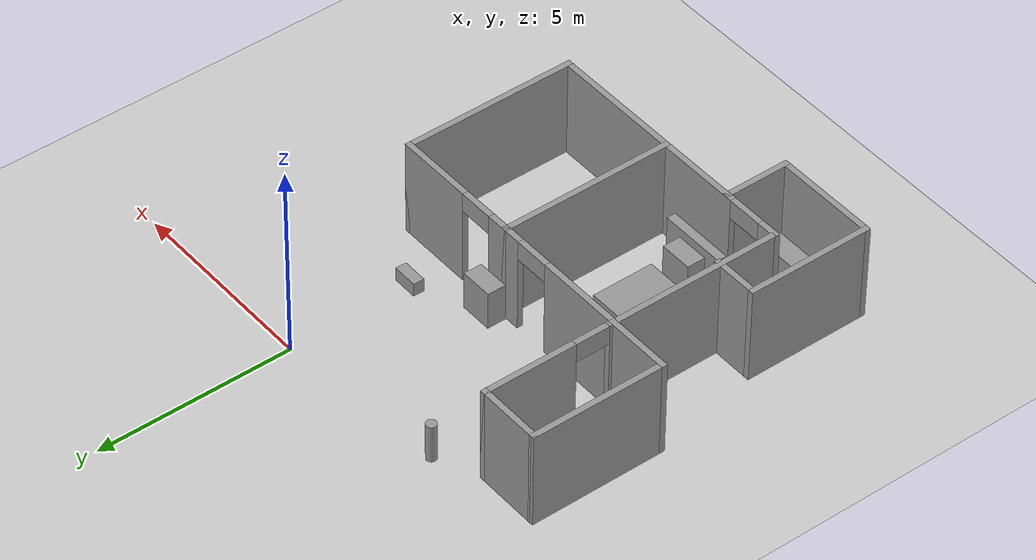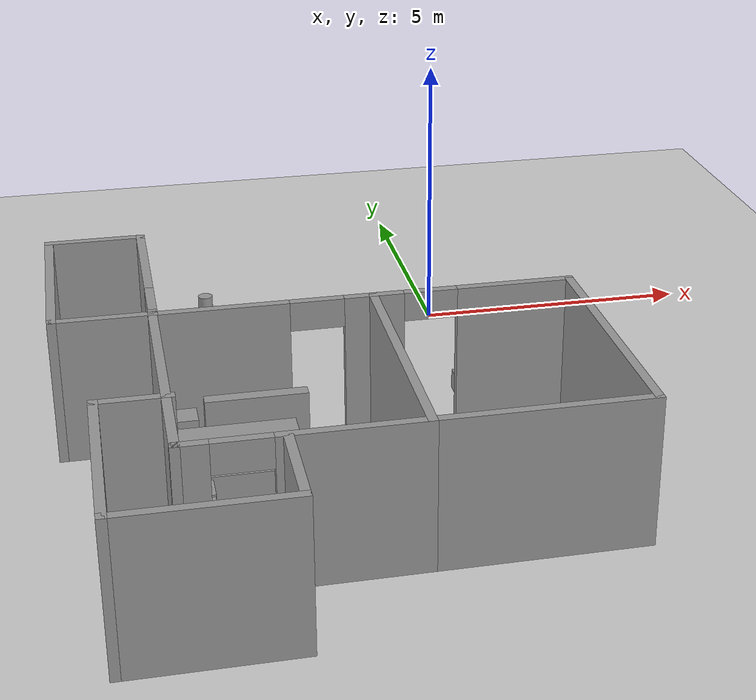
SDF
<sdf version="1.6">
 <world name="default">
  <model name="ground_plane">
   <static>1</static>
   <link name="link">
    <collision name="collision">
     <geometry><plane><normal>0 0 1</normal><size>100 100</size></plane></geometry>
     <surface><friction><ode><mu>100</mu><mu2>50</mu2></ode></friction></surface>
    </collision>
    <visual name="visual">
     <cast_shadows>0</cast_shadows>
     <geometry><plane><normal>0 0 1</normal><size>100 100</size></plane></geometry>
     <material>
      <script><uri>file://media/materials/scripts/gazebo.material</uri><name>Gazebo/Grey</name></script>
     </material>
    </visual>
   </link>
  </model>
  <model name="cma_varanda1">
   <pose>-6.32518 -2.59313 0 0 -0 0</pose>
   <link name="Wall_0">
    <pose>0.8 0 0 0 0 -1.5708</pose>
    <visual name="Wall_0_Visual_0">
     <pose>-0.5525 0 1.25 0 -0 0</pose>
     <geometry><box><size>2.395 0.15 2.5</size></box></geometry>
     <material>
      <script><uri>file://media/materials/scripts/gazebo.material</uri><name>Gazebo/Grey</name></script>
      <ambient>1 1 1 1</ambient>
     </material>
    </visual>
    <collision name="Wall_0_Collision_0">
     <geometry><box><size>2.395 0.15 2.5</size></box></geometry>
     <pose>-0.5525 0 1.25 0 -0 0</pose>
    </collision>
    <visual name="Wall_0_Visual_1">
     <pose>1.6375 0 1.25 0 -0 0</pose>
     <geometry><box><size>0.225 0.15 2.5</size></box></geometry>
     <material>
      <script><uri>file://media/materials/scripts/gazebo.material</uri><name>Gazebo/Grey</name></script>
      <ambient>1 1 1 1</ambient>
     </material>
    </visual>
    <collision name="Wall_0_Collision_1">
     <geometry><box><size>0.225 0.15 2.5</size></box></geometry>
     <pose>1.6375 0 1.25 0 -0 0</pose>
    </collision>
    <visual name="Wall_0_Visual_2">
     <pose>1.085 0 2.25 0 -0 0</pose>
     <geometry><box><size>0.88 0.15 0.5</size></box></geometry>
     <material>
      <script><uri>file://media/materials/scripts/gazebo.material</uri><name>Gazebo/Grey</name></script>
      <ambient>1 1 1 1</ambient>
     </material>
    </visual>
    <collision name="Wall_0_Collision_2">
     <geometry><box><size>0.88 0.15 0.5</size></box></geometry>
     <pose>1.085 0 2.25 0 -0 0</pose>
    </collision>
   </link>
   <link name="Wall_1">
    <collision name="Wall_1_Collision">
     <geometry><box><size>1.75 0.15 2.5</size></box></geometry>
     <pose>0 0 1.25 0 -0 0</pose>
    </collision>
    <visual name="Wall_1_Visual">
     <pose>0 0 1.25 0 -0 0</pose>
     <geometry><box><size>1.75 0.15 2.5</size></box></geometry>
     <material>
      <script><uri>file://media/materials/scripts/gazebo.material</uri><name>Gazebo/Grey</name></script>
      <ambient>1 1 1 1</ambient>
     </material>
    </visual>
    <pose>0 -1.675 0 0 -0 3.14159</pose>
   </link>
   <link name="Wall_2">
    <collision name="Wall_2_Collision">
     <geometry><box><size>3.5 0.15 2.5</size></box></geometry>
     <pose>0 0 1.25 0 -0 0</pose>
    </collision>
    <visual name="Wall_2_Visual">
     <pose>0 0 1.25 0 -0 0</pose>
     <geometry><box><size>3.5 0.15 2.5</size></box></geometry>
     <material>
      <script><uri>file://media/materials/scripts/gazebo.material</uri><name>Gazebo/Grey</name></script>
      <ambient>1 1 1 1</ambient>
     </material>
    </visual>
    <pose>-0.8 0 0 0 -0 1.5708</pose>
   </link>
   <link name="Wall_3">
    <collision name="Wall_3_Collision">
     <geometry><box><size>1.75 0.15 2.5</size></box></geometry>
     <pose>0 0 1.25 0 -0 0</pose>
    </collision>
    <visual name="Wall_3_Visual">
     <pose>0 0 1.25 0 -0 0</pose>
     <geometry><box><size>1.75 0.15 2.5</size></box></geometry>
     <material>
      <script><uri>file://media/materials/scripts/gazebo.material</uri><name>Gazebo/Grey</name></script>
      <ambient>1 1 1 1</ambient>
     </material>
    </visual>
    <pose>0 1.675 0 0 -0 0</pose>
   </link>
   <static>1</static>
  </model>
  <model name="cma_quartos">
   <pose>-2.58169 -7.26456 0 0 -0 0</pose>
   <link name="Wall_0">
    <collision name="Wall_0_Collision">
     <geometry><box><size>4.5 0.15 2.5</size></box></geometry>
     <pose>0 0 1.25 0 -0 0</pose>
    </collision>
    <visual name="Wall_0_Visual">
     <pose>0 0 1.25 0 -0 0</pose>
     <geometry><box><size>4.5 0.15 2.5</size></box></geometry>
     <material>
      <script><uri>file://media/materials/scripts/gazebo.material</uri><name>Gazebo/Grey</name></script>
      <ambient>1 1 1 1</ambient>
     </material>
    </visual>
    <pose>0.645 0.81 0 0 0 -1.5708</pose>
   </link>
   <link name="Wall_1">
    <pose>-1.155 -1.365 0 0 -0 3.14159</pose>
    <visual name="Wall_1_Visual_0">
     <pose>-0.7225 0 1.25 0 -0 0</pose>
     <geometry><box><size>2.305 0.15 2.5</size></box></geometry>
     <material>
      <script><uri>file://media/materials/scripts/gazebo.material</uri><name>Gazebo/Grey</name></script>
      <ambient>1 1 1 1</ambient>
     </material>
    </visual>
    <collision name="Wall_1_Collision_0">
     <geometry><box><size>2.305 0.15 2.5</size></box></geometry>
     <pose>-0.7225 0 1.25 0 -0 0</pose>
    </collision>
    <visual name="Wall_1_Visual_1">
     <pose>1.6025 0 1.25 0 -0 0</pose>
     <geometry><box><size>0.545 0.15 2.5</size></box></geometry>
     <material>
      <script><uri>file://media/materials/scripts/gazebo.material</uri><name>Gazebo/Grey</name></script>
      <ambient>1 1 1 1</ambient>
     </material>
    </visual>
    <collision name="Wall_1_Collision_1">
     <geometry><box><size>0.545 0.15 2.5</size></box></geometry>
     <pose>1.6025 0 1.25 0 -0 0</pose>
    </collision>
    <visual name="Wall_1_Visual_2">
     <pose>0.88 0 2.25 0 -0 0</pose>
     <geometry><box><size>0.9 0.15 0.5</size></box></geometry>
     <material>
      <script><uri>file://media/materials/scripts/gazebo.material</uri><name>Gazebo/Grey</name></script>
      <ambient>1 1 1 1</ambient>
     </material>
    </visual>
    <collision name="Wall_1_Collision_2">
     <geometry><box><size>0.9 0.15 0.5</size></box></geometry>
     <pose>0.88 0 2.25 0 -0 0</pose>
    </collision>
   </link>
   <link name="Wall_10">
    <collision name="Wall_10_Collision">
     <geometry><box><size>1.75 0.15 2.5</size></box></geometry>
     <pose>0 0 1.25 0 -0 0</pose>
    </collision>
    <visual name="Wall_10_Visual">
     <pose>0 0 1.25 0 -0 0</pose>
     <geometry><box><size>1.75 0.15 2.5</size></box></geometry>
     <material>
      <script><uri>file://media/materials/scripts/gazebo.material</uri><name>Gazebo/Grey</name></script>
      <ambient>1 1 1 1</ambient>
     </material>
    </visual>
    <pose>-1.395 -2.185 0 0 0 -1.5708</pose>
   </link>
   <link name="Wall_11">
    <collision name="Wall_11_Collision">
     <geometry><box><size>2.75 0.15 2.5</size></box></geometry>
     <pose>0 0 1.25 0 -0 0</pose>
    </collision>
    <visual name="Wall_11_Visual">
     <pose>0 0 1.25 0 -0 0</pose>
     <geometry><box><size>2.75 0.15 2.5</size></box></geometry>
     <material>
      <script><uri>file://media/materials/scripts/gazebo.material</uri><name>Gazebo/Grey</name></script>
      <ambient>1 1 1 1</ambient>
     </material>
    </visual>
    <pose>-2.695 -2.985 0 0 -0 3.14159</pose>
   </link>
   <link name="Wall_12">
    <collision name="Wall_12_Collision">
     <geometry><box><size>3.25 0.15 2.5</size></box></geometry>
     <pose>0 0 1.25 0 -0 0</pose>
    </collision>
    <visual name="Wall_12_Visual">
     <pose>0 0 1.25 0 -0 0</pose>
     <geometry><box><size>3.25 0.15 2.5</size></box></geometry>
     <material>
      <script><uri>file://media/materials/scripts/gazebo.material</uri><name>Gazebo/Grey</name></script>
      <ambient>1 1 1 1</ambient>
     </material>
    </visual>
    <pose>-3.995 -1.435 0 0 -0 1.5708</pose>
   </link>
   <link name="Wall_13">
    <collision name="Wall_13_Collision">
     <geometry><box><size>1.25 0.15 2.5</size></box></geometry>
     <pose>0 0 1.25 0 -0 0</pose>
    </collision>
    <visual name="Wall_13_Visual">
     <pose>0 0 1.25 0 -0 0</pose>
     <geometry><box><size>1.25 0.15 2.5</size></box></geometry>
     <material>
      <script><uri>file://media/materials/scripts/gazebo.material</uri><name>Gazebo/Grey</name></script>
      <ambient>1 1 1 1</ambient>
     </material>
    </visual>
    <pose>-3.445 0.115 0 0 -0 0</pose>
   </link>
   <link name="Wall_2">
    <collision name="Wall_2_Collision">
     <geometry><box><size>4.5 0.15 2.5</size></box></geometry>
     <pose>0 0 1.25 0 -0 0</pose>
    </collision>
    <visual name="Wall_2_Visual">
     <pose>0 0 1.25 0 -0 0</pose>
     <geometry><box><size>4.5 0.15 2.5</size></box></geometry>
     <material>
      <script><uri>file://media/materials/scripts/gazebo.material</uri><name>Gazebo/Grey</name></script>
      <ambient>1 1 1 1</ambient>
     </material>
    </visual>
    <pose>-2.955 0.81 0 0 -0 1.5708</pose>
   </link>
   <link name="Wall_3">
    <pose>-1.155 2.985 0 0 -0 0</pose>
    <visual name="Wall_3_Visual_0">
     <pose>-0.7325 0 1.25 0 -0 0</pose>
     <geometry><box><size>2.285 0.15 2.5</size></box></geometry>
     <material>
      <script><uri>file://media/materials/scripts/gazebo.material</uri><name>Gazebo/Grey</name></script>
      <ambient>1 1 1 1</ambient>
     </material>
    </visual>
    <collision name="Wall_3_Collision_0">
     <geometry><box><size>2.285 0.15 2.5</size></box></geometry>
     <pose>-0.7325 0 1.25 0 -0 0</pose>
    </collision>
    <visual name="Wall_3_Visual_1">
     <pose>1.5925 0 1.25 0 -0 0</pose>
     <geometry><box><size>0.565 0.15 2.5</size></box></geometry>
     <material>
      <script><uri>file://media/materials/scripts/gazebo.material</uri><name>Gazebo/Grey</name></script>
      <ambient>1 1 1 1</ambient>
     </material>
    </visual>
    <collision name="Wall_3_Collision_1">
     <geometry><box><size>0.565 0.15 2.5</size></box></geometry>
     <pose>1.5925 0 1.25 0 -0 0</pose>
    </collision>
    <visual name="Wall_3_Visual_2">
     <pose>0.86 0 2.25 0 -0 0</pose>
     <geometry><box><size>0.9 0.15 0.5</size></box></geometry>
     <material>
      <script><uri>file://media/materials/scripts/gazebo.material</uri><name>Gazebo/Grey</name></script>
      <ambient>1 1 1 1</ambient>
     </material>
    </visual>
    <collision name="Wall_3_Collision_2">
     <geometry><box><size>0.9 0.15 0.5</size></box></geometry>
     <pose>0.86 0 2.25 0 -0 0</pose>
    </collision>
   </link>
   <link name="Wall_6">
    <pose>2.32 2.985 0 0 -0 0</pose>
    <visual name="Wall_6_Visual_0">
     <pose>-1.4575 0 1.25 0 -0 0</pose>
     <geometry><box><size>0.585 0.15 2.5</size></box></geometry>
     <material>
      <script><uri>file://media/materials/scripts/gazebo.material</uri><name>Gazebo/Grey</name></script>
      <ambient>1 1 1 1</ambient>
     </material>
    </visual>
    <collision name="Wall_6_Collision_0">
     <geometry><box><size>0.585 0.15 2.5</size></box></geometry>
     <pose>-1.4575 0 1.25 0 -0 0</pose>
    </collision>
    <visual name="Wall_6_Visual_1">
     <pose>0.7425 0 1.25 0 -0 0</pose>
     <geometry><box><size>2.015 0.15 2.5</size></box></geometry>
     <material>
      <script><uri>file://media/materials/scripts/gazebo.material</uri><name>Gazebo/Grey</name></script>
      <ambient>1 1 1 1</ambient>
     </material>
    </visual>
    <collision name="Wall_6_Collision_1">
     <geometry><box><size>2.015 0.15 2.5</size></box></geometry>
     <pose>0.7425 0 1.25 0 -0 0</pose>
    </collision>
    <visual name="Wall_6_Visual_2">
     <pose>-0.715 0 2.25 0 -0 0</pose>
     <geometry><box><size>0.9 0.15 0.5</size></box></geometry>
     <material>
      <script><uri>file://media/materials/scripts/gazebo.material</uri><name>Gazebo/Grey</name></script>
      <ambient>1 1 1 1</ambient>
     </material>
    </visual>
    <collision name="Wall_6_Collision_2">
     <geometry><box><size>0.9 0.15 0.5</size></box></geometry>
     <pose>-0.715 0 2.25 0 -0 0</pose>
    </collision>
   </link>
   <link name="Wall_7">
    <collision name="Wall_7_Collision">
     <geometry><box><size>4.5 0.15 2.5</size></box></geometry>
     <pose>0 0 1.25 0 -0 0</pose>
    </collision>
    <visual name="Wall_7_Visual">
     <pose>0 0 1.25 0 -0 0</pose>
     <geometry><box><size>4.5 0.15 2.5</size></box></geometry>
     <material>
      <script><uri>file://media/materials/scripts/gazebo.material</uri><name>Gazebo/Grey</name></script>
      <ambient>1 1 1 1</ambient>
     </material>
    </visual>
    <pose>3.995 0.81 0 0 0 -1.5708</pose>
   </link>
   <link name="Wall_8">
    <collision name="Wall_8_Collision">
     <geometry><box><size>3.5 0.15 2.5</size></box></geometry>
     <pose>0 0 1.25 0 -0 0</pose>
    </collision>
    <visual name="Wall_8_Visual">
     <pose>0 0 1.25 0 -0 0</pose>
     <geometry><box><size>3.5 0.15 2.5</size></box></geometry>
     <material>
      <script><uri>file://media/materials/scripts/gazebo.material</uri><name>Gazebo/Grey</name></script>
      <ambient>1 1 1 1</ambient>
     </material>
    </visual>
    <pose>2.32 -1.365 0 0 -0 3.14159</pose>
   </link>
   <static>1</static>
  </model>
  <model name="cma_armario_s">
   <link name="link_1">
    <pose>-2e-06 -3e-06 0 0 -0 0</pose>
    <inertial>
     <mass>0.390159</mass>
     <inertia>
      <ixx>0.039647</ixx>
      <ixy>0</ixy>
      <ixz>0</ixz>
      <iyy>0.0550708</iyy>
      <iyz>0</iyz>
      <izz>0.0296912</izz>
     </inertia>
    </inertial>
    <visual name="visual">
     <geometry><box><size>0.832942 0.468397 1</size></box></geometry>
     <material>
      <lighting>1</lighting>
      <script><uri>file://media/materials/scripts/gazebo.material</uri><name>Gazebo/Grey</name></script>
      <ambient>0.3 0.3 0.3 1</ambient>
      <diffuse>0.7 0.7 0.7 1</diffuse>
      <specular>0.01 0.01 0.01 1</specular>
      <emissive>0 0 0 1</emissive>
     </material>
    </visual>
    <collision name="collision">
     <geometry><box><size>0.832942 0.468397 1</size></box></geometry>
     <surface>
      <friction>
       <ode><mu>1</mu><mu2>1</mu2><fdir1>0 0 0</fdir1><slip1>0</slip1><slip2>0</slip2></ode>
       <torsional>
        <coefficient>1</coefficient>
        <patch_radius>0</patch_radius>
        <surface_radius>0</surface_radius>
        <use_patch_radius>1</use_patch_radius>
        <ode><slip>0</slip></ode>
       </torsional>
      </friction>
      <bounce><restitution_coefficient>0</restitution_coefficient><threshold>1e+06</threshold></bounce>
      <contact>
       <collide_without_contact>0</collide_without_contact>
       <collide_without_contact_bitmask>1</collide_without_contact_bitmask>
       <collide_bitmask>1</collide_bitmask>
       <ode>
        <soft_cfm>0</soft_cfm>
        <soft_erp>0.2</soft_erp>
        <kp>1e+13</kp>
        <kd>1</kd>
        <max_vel>0.01</max_vel>
        <min_depth>0</min_depth>
       </ode>
       <bullet>
        <split_impulse>1</split_impulse>
        <split_impulse_penetration_threshold>-0.01</split_impulse_penetration_threshold>
        <soft_cfm>0</soft_cfm>
        <soft_erp>0.2</soft_erp>
        <kp>1e+13</kp>
        <kd>1</kd>
       </bullet>
      </contact>
     </surface>
    </collision>
   </link>
   <static>0</static>
   <pose>-1.63838 -3.93789 0.499999 3e-06 -0 0.0021</pose>
  </model>
  <model name="cma_cama_c">
   <link name="link_0">
    <pose>5e-06 -4e-06 0 0 -0 0</pose>
    <inertial>
     <mass>3.18358</mass>
     <inertia><ixx>0.934862</ixx><ixy>0</ixy><ixz>0</ixz><iyy>1.33069</iyy><iyz>0</iyz><izz>1.73496</izz></inertia>
    </inertial>
    <visual name="visual">
     <geometry><box><size>2.00394 1.58866 1</size></box></geometry>
     <material>
      <lighting>1</lighting>
      <script><uri>file://media/materials/scripts/gazebo.material</uri><name>Gazebo/Grey</name></script>
      <ambient>0.3 0.3 0.3 1</ambient>
      <diffuse>0.7 0.7 0.7 1</diffuse>
      <specular>0.01 0.01 0.01 1</specular>
      <emissive>0 0 0 1</emissive>
     </material>
    </visual>
    <collision name="collision">
     <geometry><box><size>2.00394 1.58866 1</size></box></geometry>
     <surface>
      <friction>
       <ode><mu>1</mu><mu2>1</mu2><fdir1>0 0 0</fdir1><slip1>0</slip1><slip2>0</slip2></ode>
       <torsional>
        <coefficient>1</coefficient>
        <patch_radius>0</patch_radius>
        <surface_radius>0</surface_radius>
        <use_patch_radius>1</use_patch_radius>
        <ode><slip>0</slip></ode>
       </torsional>
      </friction>
      <bounce><restitution_coefficient>0</restitution_coefficient><threshold>1e+06</threshold></bounce>
      <contact>
       <collide_without_contact>0</collide_without_contact>
       <collide_without_contact_bitmask>1</collide_without_contact_bitmask>
       <collide_bitmask>1</collide_bitmask>
       <ode>
        <soft_cfm>0</soft_cfm>
        <soft_erp>0.2</soft_erp>
        <kp>1e+13</kp>
        <kd>1</kd>
        <max_vel>0.01</max_vel>
        <min_depth>0</min_depth>
       </ode>
       <bullet>
        <split_impulse>1</split_impulse>
        <split_impulse_penetration_threshold>-0.01</split_impulse_penetration_threshold>
        <soft_cfm>0</soft_cfm>
        <soft_erp>0.2</soft_erp>
        <kp>1e+13</kp>
        <kd>1</kd>
       </bullet>
      </contact>
     </surface>
    </collision>
   </link>
   <static>0</static>
   <pose>-4.43933 -6.24816 0.5 0 -0 0</pose>
  </model>
  <model name="cma_armario_0">
   <link name="link_0">
    <pose>1.32157 0.885178 0.5 0 -0 0</pose>
    <inertial>
     <mass>0.402376</mass>
     <inertia>
      <ixx>0.0353686</ixx>
      <ixy>0</ixy>
      <ixz>0</ixz>
      <iyy>0.132616</iyy>
      <iyz>0</iyz>
      <izz>0.100922</izz>
     </inertia>
    </inertial>
    <visual name="visual">
     <geometry><box><size>1.71877 0.234069 1</size></box></geometry>
     <material>
      <lighting>1</lighting>
      <script><uri>file://media/materials/scripts/gazebo.material</uri><name>Gazebo/Grey</name></script>
      <ambient>0.3 0.3 0.3 1</ambient>
      <diffuse>0.7 0.7 0.7 1</diffuse>
      <specular>0.01 0.01 0.01 1</specular>
      <emissive>0 0 0 1</emissive>
     </material>
    </visual>
    <collision name="collision">
     <geometry><box><size>1.71877 0.234069 1</size></box></geometry>
     <surface>
      <friction>
       <ode><mu>1</mu><mu2>1</mu2><fdir1>0 0 0</fdir1><slip1>0</slip1><slip2>0</slip2></ode>
       <torsional>
        <coefficient>1</coefficient>
        <patch_radius>0</patch_radius>
        <surface_radius>0</surface_radius>
        <use_patch_radius>1</use_patch_radius>
        <ode><slip>0</slip></ode>
       </torsional>
      </friction>
      <bounce><restitution_coefficient>0</restitution_coefficient><threshold>1e+06</threshold></bounce>
      <contact>
       <collide_without_contact>0</collide_without_contact>
       <collide_without_contact_bitmask>1</collide_without_contact_bitmask>
       <collide_bitmask>1</collide_bitmask>
       <ode>
        <soft_cfm>0</soft_cfm>
        <soft_erp>0.2</soft_erp>
        <kp>1e+13</kp>
        <kd>1</kd>
        <max_vel>0.01</max_vel>
        <min_depth>0</min_depth>
       </ode>
       <bullet>
        <split_impulse>1</split_impulse>
        <split_impulse_penetration_threshold>-0.01</split_impulse_penetration_threshold>
        <soft_cfm>0</soft_cfm>
        <soft_erp>0.2</soft_erp>
        <kp>1e+13</kp>
        <kd>1</kd>
       </bullet>
      </contact>
     </surface>
    </collision>
   </link>
   <static>0</static>
   <pose>-5.27888 -5.41566 -2e-06 2e-06 -0 -0.003064</pose>
  </model>
  <model name="cma_gaveteiro_pequeno_1">
   <link name="link_0">
    <pose>0.256174 1.25055 0.5 0 -0 0</pose>
    <inertial>
     <mass>0.187186</mass>
     <inertia>
      <ixx>0.01851</ixx>
      <ixy>0</ixy>
      <ixz>0</ixz>
      <iyy>0.0185276</iyy>
      <iyz>0</iyz>
      <izz>0.00583981</izz>
     </inertia>
    </inertial>
    <visual name="visual">
     <geometry><box><size>0.433317 0.432002 1</size></box></geometry>
     <material>
      <lighting>1</lighting>
      <script><uri>file://media/materials/scripts/gazebo.material</uri><name>Gazebo/Grey</name></script>
      <ambient>0.3 0.3 0.3 1</ambient>
      <diffuse>0.7 0.7 0.7 1</diffuse>
      <specular>0.01 0.01 0.01 1</specular>
      <emissive>0 0 0 1</emissive>
     </material>
    </visual>
    <collision name="collision">
     <geometry><box><size>0.433317 0.432002 1</size></box></geometry>
     <surface>
      <friction>
       <ode><mu>1</mu><mu2>1</mu2><fdir1>0 0 0</fdir1><slip1>0</slip1><slip2>0</slip2></ode>
       <torsional>
        <coefficient>1</coefficient>
        <patch_radius>0</patch_radius>
        <surface_radius>0</surface_radius>
        <use_patch_radius>1</use_patch_radius>
        <ode><slip>0</slip></ode>
       </torsional>
      </friction>
      <bounce><restitution_coefficient>0</restitution_coefficient><threshold>1e+06</threshold></bounce>
      <contact>
       <collide_without_contact>0</collide_without_contact>
       <collide_without_contact_bitmask>1</collide_without_contact_bitmask>
       <collide_bitmask>1</collide_bitmask>
       <ode>
        <soft_cfm>0</soft_cfm>
        <soft_erp>0.2</soft_erp>
        <kp>1e+13</kp>
        <kd>1</kd>
        <max_vel>0.01</max_vel>
        <min_depth>0</min_depth>
       </ode>
       <bullet>
        <split_impulse>1</split_impulse>
        <split_impulse_penetration_threshold>-0.01</split_impulse_penetration_threshold>
        <soft_cfm>0</soft_cfm>
        <soft_erp>0.2</soft_erp>
        <kp>1e+13</kp>
        <kd>1</kd>
       </bullet>
      </contact>
     </surface>
    </collision>
   </link>
   <static>0</static>
   <pose>-5.43096 -6.25507 3e-06 -0 7e-06 -1e-06</pose>
  </model>
  <model name="cma_armario_s_0">
   <link name="link_1">
    <pose>-2e-06 -3e-06 0 0 -0 0</pose>
    <inertial>
     <mass>0.390159</mass>
     <inertia>
      <ixx>0.039647</ixx>
      <ixy>0</ixy>
      <ixz>0</ixz>
      <iyy>0.0550708</iyy>
      <iyz>0</iyz>
      <izz>0.0296912</izz>
     </inertia>
    </inertial>
    <visual name="visual">
     <geometry><box><size>0.832942 0.468397 1</size></box></geometry>
     <material>
      <lighting>1</lighting>
      <script><uri>file://media/materials/scripts/gazebo.material</uri><name>Gazebo/Grey</name></script>
      <ambient>0.3 0.3 0.3 1</ambient>
      <diffuse>0.7 0.7 0.7 1</diffuse>
      <specular>0.01 0.01 0.01 1</specular>
      <emissive>0 0 0 1</emissive>
     </material>
    </visual>
    <collision name="collision">
     <geometry><box><size>0.832942 0.468397 1</size></box></geometry>
     <surface>
      <friction>
       <ode><mu>1</mu><mu2>1</mu2><fdir1>0 0 0</fdir1><slip1>0</slip1><slip2>0</slip2></ode>
       <torsional>
        <coefficient>1</coefficient>
        <patch_radius>0</patch_radius>
        <surface_radius>0</surface_radius>
        <use_patch_radius>1</use_patch_radius>
        <ode><slip>0</slip></ode>
       </torsional>
      </friction>
      <bounce><restitution_coefficient>0</restitution_coefficient><threshold>1e+06</threshold></bounce>
      <contact>
       <collide_without_contact>0</collide_without_contact>
       <collide_without_contact_bitmask>1</collide_without_contact_bitmask>
       <collide_bitmask>1</collide_bitmask>
       <ode>
        <soft_cfm>0</soft_cfm>
        <soft_erp>0.2</soft_erp>
        <kp>1e+13</kp>
        <kd>1</kd>
        <max_vel>0.01</max_vel>
        <min_depth>0</min_depth>
       </ode>
       <bullet>
        <split_impulse>1</split_impulse>
        <split_impulse_penetration_threshold>-0.01</split_impulse_penetration_threshold>
        <soft_cfm>0</soft_cfm>
        <soft_erp>0.2</soft_erp>
        <kp>1e+13</kp>
        <kd>1</kd>
       </bullet>
      </contact>
     </surface>
    </collision>
   </link>
   <static>0</static>
   <pose>-5.16843 -8.01555 0.5 0 0 -1.57647</pose>
  </model>
  <model name="cma_gaveteiro_pequeno_2">
   <link name="link_0">
    <pose>0.256174 1.25055 0.5 0 -0 0</pose>
    <inertial>
     <mass>0.187186</mass>
     <inertia>
      <ixx>0.01851</ixx>
      <ixy>0</ixy>
      <ixz>0</ixz>
      <iyy>0.0185276</iyy>
      <iyz>0</iyz>
      <izz>0.00583981</izz>
     </inertia>
    </inertial>
    <visual name="visual">
     <geometry><box><size>0.433317 0.432002 1</size></box></geometry>
     <material>
      <lighting>1</lighting>
      <script><uri>file://media/materials/scripts/gazebo.material</uri><name>Gazebo/Grey</name></script>
      <ambient>0.3 0.3 0.3 1</ambient>
      <diffuse>0.7 0.7 0.7 1</diffuse>
      <specular>0.01 0.01 0.01 1</specular>
      <emissive>0 0 0 1</emissive>
     </material>
    </visual>
    <collision name="collision">
     <geometry><box><size>0.433317 0.432002 1</size></box></geometry>
     <surface>
      <friction>
       <ode><mu>1</mu><mu2>1</mu2><fdir1>0 0 0</fdir1><slip1>0</slip1><slip2>0</slip2></ode>
       <torsional>
        <coefficient>1</coefficient>
        <patch_radius>0</patch_radius>
        <surface_radius>0</surface_radius>
        <use_patch_radius>1</use_patch_radius>
        <ode><slip>0</slip></ode>
       </torsional>
      </friction>
      <bounce><restitution_coefficient>0</restitution_coefficient><threshold>1e+06</threshold></bounce>
      <contact>
       <collide_without_contact>0</collide_without_contact>
       <collide_without_contact_bitmask>1</collide_without_contact_bitmask>
       <collide_bitmask>1</collide_bitmask>
       <ode>
        <soft_cfm>0</soft_cfm>
        <soft_erp>0.2</soft_erp>
        <kp>1e+13</kp>
        <kd>1</kd>
        <max_vel>0.01</max_vel>
        <min_depth>0</min_depth>
       </ode>
       <bullet>
        <split_impulse>1</split_impulse>
        <split_impulse_penetration_threshold>-0.01</split_impulse_penetration_threshold>
        <soft_cfm>0</soft_cfm>
        <soft_erp>0.2</soft_erp>
        <kp>1e+13</kp>
        <kd>1</kd>
       </bullet>
      </contact>
     </surface>
    </collision>
   </link>
   <static>0</static>
   <pose>-5.39172 -8.5855 -1.2e-05 8e-06 0 -0.000103</pose>
  </model>
  <model name="cma_armario_s_1">
   <link name="link_1">
    <pose>-2e-06 -3e-06 0 0 -0 0</pose>
    <inertial>
     <mass>0.390159</mass>
     <inertia>
      <ixx>0.039647</ixx>
      <ixy>0</ixy>
      <ixz>0</ixz>
      <iyy>0.0550708</iyy>
      <iyz>0</iyz>
      <izz>0.0296912</izz>
     </inertia>
    </inertial>
    <visual name="visual">
     <geometry><box><size>0.832942 0.468397 1</size></box></geometry>
     <material>
      <lighting>1</lighting>
      <script><uri>file://media/materials/scripts/gazebo.material</uri><name>Gazebo/Grey</name></script>
      <ambient>0.3 0.3 0.3 1</ambient>
      <diffuse>0.7 0.7 0.7 1</diffuse>
      <specular>0.01 0.01 0.01 1</specular>
      <emissive>0 0 0 1</emissive>
     </material>
    </visual>
    <collision name="collision">
     <geometry><box><size>0.832942 0.468397 1</size></box></geometry>
     <surface>
      <friction>
       <ode><mu>1</mu><mu2>1</mu2><fdir1>0 0 0</fdir1><slip1>0</slip1><slip2>0</slip2></ode>
       <torsional>
        <coefficient>1</coefficient>
        <patch_radius>0</patch_radius>
        <surface_radius>0</surface_radius>
        <use_patch_radius>1</use_patch_radius>
        <ode><slip>0</slip></ode>
       </torsional>
      </friction>
      <bounce><restitution_coefficient>0</restitution_coefficient><threshold>1e+06</threshold></bounce>
      <contact>
       <collide_without_contact>0</collide_without_contact>
       <collide_without_contact_bitmask>1</collide_without_contact_bitmask>
       <collide_bitmask>1</collide_bitmask>
       <ode>
        <soft_cfm>0</soft_cfm>
        <soft_erp>0.2</soft_erp>
        <kp>1e+13</kp>
        <kd>1</kd>
        <max_vel>0.01</max_vel>
        <min_depth>0</min_depth>
       </ode>
       <bullet>
        <split_impulse>1</split_impulse>
        <split_impulse_penetration_threshold>-0.01</split_impulse_penetration_threshold>
        <soft_cfm>0</soft_cfm>
        <soft_erp>0.2</soft_erp>
        <kp>1e+13</kp>
        <kd>1</kd>
       </bullet>
      </contact>
     </surface>
    </collision>
   </link>
   <static>0</static>
   <pose>-3.57944 -7.82384 0.499999 3e-06 -0 -0.002134</pose>
  </model>
  <model name="cma_armario_1">
   <link name="link_0">
    <pose>1.32157 0.885178 0.5 0 -0 0</pose>
    <inertial>
     <mass>0.402376</mass>
     <inertia>
      <ixx>0.0353686</ixx>
      <ixy>0</ixy>
      <ixz>0</ixz>
      <iyy>0.132616</iyy>
      <iyz>0</iyz>
      <izz>0.100922</izz>
     </inertia>
    </inertial>
    <visual name="visual">
     <geometry><box><size>1.71877 0.234069 1</size></box></geometry>
     <material>
      <lighting>1</lighting>
      <script><uri>file://media/materials/scripts/gazebo.material</uri><name>Gazebo/Grey</name></script>
      <ambient>0.3 0.3 0.3 1</ambient>
      <diffuse>0.7 0.7 0.7 1</diffuse>
      <specular>0.01 0.01 0.01 1</specular>
      <emissive>0 0 0 1</emissive>
     </material>
    </visual>
    <collision name="collision">
     <geometry><box><size>1.71877 0.234069 1</size></box></geometry>
     <surface>
      <friction>
       <ode><mu>1</mu><mu2>1</mu2><fdir1>0 0 0</fdir1><slip1>0</slip1><slip2>0</slip2></ode>
       <torsional>
        <coefficient>1</coefficient>
        <patch_radius>0</patch_radius>
        <surface_radius>0</surface_radius>
        <use_patch_radius>1</use_patch_radius>
        <ode><slip>0</slip></ode>
       </torsional>
      </friction>
      <bounce><restitution_coefficient>0</restitution_coefficient><threshold>1e+06</threshold></bounce>
      <contact>
       <collide_without_contact>0</collide_without_contact>
       <collide_without_contact_bitmask>1</collide_without_contact_bitmask>
       <collide_bitmask>1</collide_bitmask>
       <ode>
        <soft_cfm>0</soft_cfm>
        <soft_erp>0.2</soft_erp>
        <kp>1e+13</kp>
        <kd>1</kd>
        <max_vel>0.01</max_vel>
        <min_depth>0</min_depth>
       </ode>
       <bullet>
        <split_impulse>1</split_impulse>
        <split_impulse_penetration_threshold>-0.01</split_impulse_penetration_threshold>
        <soft_cfm>0</soft_cfm>
        <soft_erp>0.2</soft_erp>
        <kp>1e+13</kp>
        <kd>1</kd>
       </bullet>
      </contact>
     </surface>
    </collision>
   </link>
   <static>0</static>
   <pose>-4.70172 -9.22409 -2e-06 2e-06 -0 -0.003064</pose>
  </model>
  <model name="cma_lixo_1">
   <link name="link_1">
    <pose>0.882962 1.81586 0.5 0 -0 0</pose>
    <inertial>
     <mass>0.0687644</mass>
     <inertia>
      <ixx>0.00602588</ixx>
      <ixy>0</ixy>
      <ixz>0</ixz>
      <iyy>0.00602588</iyy>
      <iyz>0</iyz>
      <izz>0.000591068</izz>
     </inertia>
    </inertial>
    <visual name="visual">
     <geometry><cylinder><radius>0.131112</radius><length>1</length></cylinder></geometry>
     <material>
      <lighting>1</lighting>
      <script><uri>file://media/materials/scripts/gazebo.material</uri><name>Gazebo/Grey</name></script>
      <ambient>0.3 0.3 0.3 1</ambient>
      <diffuse>0.7 0.7 0.7 1</diffuse>
      <specular>0.01 0.01 0.01 1</specular>
      <emissive>0 0 0 1</emissive>
     </material>
    </visual>
    <collision name="collision">
     <geometry><cylinder><radius>0.131112</radius><length>1</length></cylinder></geometry>
     <surface>
      <friction>
       <ode><mu>1</mu><mu2>1</mu2><fdir1>0 0 0</fdir1><slip1>0</slip1><slip2>0</slip2></ode>
       <torsional>
        <coefficient>1</coefficient>
        <patch_radius>0</patch_radius>
        <surface_radius>0</surface_radius>
        <use_patch_radius>1</use_patch_radius>
        <ode><slip>0</slip></ode>
       </torsional>
      </friction>
      <bounce><restitution_coefficient>0</restitution_coefficient><threshold>1e+06</threshold></bounce>
      <contact>
       <collide_without_contact>0</collide_without_contact>
       <collide_without_contact_bitmask>1</collide_without_contact_bitmask>
       <collide_bitmask>1</collide_bitmask>
       <ode>
        <soft_cfm>0</soft_cfm>
        <soft_erp>0.2</soft_erp>
        <kp>1e+13</kp>
        <kd>1</kd>
        <max_vel>0.01</max_vel>
        <min_depth>0</min_depth>
       </ode>
       <bullet>
        <split_impulse>1</split_impulse>
        <split_impulse_penetration_threshold>-0.01</split_impulse_penetration_threshold>
        <soft_cfm>0</soft_cfm>
        <soft_erp>0.2</soft_erp>
        <kp>1e+13</kp>
        <kd>1</kd>
       </bullet>
      </contact>
     </surface>
    </collision>
   </link>
   <static>0</static>
   <pose>-2.57103 -9.7975 -2e-06 0 -0 0</pose>
  </model>
  <model name="cma_lixo_2">
   <link name="link_1">
    <pose>0.882962 1.81586 0.5 0 -0 0</pose>
    <inertial>
     <mass>0.0687644</mass>
     <inertia>
      <ixx>0.00602588</ixx>
      <ixy>0</ixy>
      <ixz>0</ixz>
      <iyy>0.00602588</iyy>
      <iyz>0</iyz>
      <izz>0.000591068</izz>
     </inertia>
    </inertial>
    <visual name="visual">
     <geometry><cylinder><radius>0.131112</radius><length>1</length></cylinder></geometry>
     <material>
      <lighting>1</lighting>
      <script><uri>file://media/materials/scripts/gazebo.material</uri><name>Gazebo/Grey</name></script>
      <ambient>0.3 0.3 0.3 1</ambient>
      <diffuse>0.7 0.7 0.7 1</diffuse>
      <specular>0.01 0.01 0.01 1</specular>
      <emissive>0 0 0 1</emissive>
     </material>
    </visual>
    <collision name="collision">
     <geometry><cylinder><radius>0.131112</radius><length>1</length></cylinder></geometry>
     <surface>
      <friction>
       <ode><mu>1</mu><mu2>1</mu2><fdir1>0 0 0</fdir1><slip1>0</slip1><slip2>0</slip2></ode>
       <torsional>
        <coefficient>1</coefficient>
        <patch_radius>0</patch_radius>
        <surface_radius>0</surface_radius>
        <use_patch_radius>1</use_patch_radius>
        <ode><slip>0</slip></ode>
       </torsional>
      </friction>
      <bounce><restitution_coefficient>0</restitution_coefficient><threshold>1e+06</threshold></bounce>
      <contact>
       <collide_without_contact>0</collide_without_contact>
       <collide_without_contact_bitmask>1</collide_without_contact_bitmask>
       <collide_bitmask>1</collide_bitmask>
       <ode>
        <soft_cfm>0</soft_cfm>
        <soft_erp>0.2</soft_erp>
        <kp>1e+13</kp>
        <kd>1</kd>
        <max_vel>0.01</max_vel>
        <min_depth>0</min_depth>
       </ode>
       <bullet>
        <split_impulse>1</split_impulse>
        <split_impulse_penetration_threshold>-0.01</split_impulse_penetration_threshold>
        <soft_cfm>0</soft_cfm>
        <soft_erp>0.2</soft_erp>
        <kp>1e+13</kp>
        <kd>1</kd>
       </bullet>
      </contact>
     </surface>
    </collision>
   </link>
   <static>0</static>
   <pose>-5.27342 -2.21345 -2e-06 0 -0 0</pose>
  </model>
  <model name="cma_barra_70cm">
   <link name="link_2">
    <pose>3.35384 1.20238 0.5 0 -0 0</pose>
    <inertial>
     <mass>0.0631368</mass>
     <inertia>
      <ixx>0.00106542</ixx>
      <ixy>0</ixy>
      <ixz>0</ixz>
      <iyy>0.00284727</iyy>
      <iyz>0</iyz>
      <izz>0.0025815</izz>
     </inertia>
    </inertial>
    <visual name="visual">
     <geometry><box><size>0.643938 0.275728 0.355737</size></box></geometry>
     <material>
      <lighting>1</lighting>
      <script><uri>file://media/materials/scripts/gazebo.material</uri><name>Gazebo/Grey</name></script>
      <ambient>0.3 0.3 0.3 1</ambient>
      <diffuse>0.7 0.7 0.7 1</diffuse>
      <specular>0.01 0.01 0.01 1</specular>
      <emissive>0 0 0 1</emissive>
     </material>
    </visual>
    <collision name="collision">
     <geometry><box><size>0.643938 0.275728 0.355737</size></box></geometry>
     <surface>
      <friction>
       <ode><mu>1</mu><mu2>1</mu2><fdir1>0 0 0</fdir1><slip1>0</slip1><slip2>0</slip2></ode>
       <torsional>
        <coefficient>1</coefficient>
        <patch_radius>0</patch_radius>
        <surface_radius>0</surface_radius>
        <use_patch_radius>1</use_patch_radius>
        <ode><slip>0</slip></ode>
       </torsional>
      </friction>
      <bounce><restitution_coefficient>0</restitution_coefficient><threshold>1e+06</threshold></bounce>
      <contact>
       <collide_without_contact>0</collide_without_contact>
       <collide_without_contact_bitmask>1</collide_without_contact_bitmask>
       <collide_bitmask>1</collide_bitmask>
       <ode>
        <soft_cfm>0</soft_cfm>
        <soft_erp>0.2</soft_erp>
        <kp>1e+13</kp>
        <kd>1</kd>
        <max_vel>0.01</max_vel>
        <min_depth>0</min_depth>
       </ode>
       <bullet>
        <split_impulse>1</split_impulse>
        <split_impulse_penetration_threshold>-0.01</split_impulse_penetration_threshold>
        <soft_cfm>0</soft_cfm>
        <soft_erp>0.2</soft_erp>
        <kp>1e+13</kp>
        <kd>1</kd>
       </bullet>
      </contact>
     </surface>
    </collision>
   </link>
   <static>0</static>
   <pose>-3.33492 -4.37522 -0.322102 -2.7e-05 0 -0.009183</pose>
  </model>
  <model name="cma_sut_a1">
   <link name="link_0">
    <pose>2e-06 2e-06 0 0 -0 0</pose>
    <inertial>
     <mass>0.432067</mass>
     <inertia>
      <ixx>0.0246645</ixx>
      <ixy>0</ixy>
      <ixz>0</ixz>
      <iyy>0.0751042</iyy>
      <iyz>0</iyz>
      <izz>0.0697721</izz>
     </inertia>
    </inertial>
    <visual name="visual">
     <geometry><box><size>1.29203 0.518133 0.645405</size></box></geometry>
     <material>
      <lighting>1</lighting>
      <script><uri>file://media/materials/scripts/gazebo.material</uri><name>Gazebo/Grey</name></script>
      <ambient>0.3 0.3 0.3 1</ambient>
      <diffuse>0.7 0.7 0.7 1</diffuse>
      <specular>0.01 0.01 0.01 1</specular>
      <emissive>0 0 0 1</emissive>
     </material>
    </visual>
    <collision name="collision">
     <geometry><box><size>1.29203 0.518133 0.645405</size></box></geometry>
     <surface>
      <friction>
       <ode><mu>1</mu><mu2>1</mu2><fdir1>0 0 0</fdir1><slip1>0</slip1><slip2>0</slip2></ode>
       <torsional>
        <coefficient>1</coefficient>
        <patch_radius>0</patch_radius>
        <surface_radius>0</surface_radius>
        <use_patch_radius>1</use_patch_radius>
        <ode><slip>0</slip></ode>
       </torsional>
      </friction>
      <bounce><restitution_coefficient>0</restitution_coefficient><threshold>1e+06</threshold></bounce>
      <contact>
       <collide_without_contact>0</collide_without_contact>
       <collide_without_contact_bitmask>1</collide_without_contact_bitmask>
       <collide_bitmask>1</collide_bitmask>
       <ode>
        <soft_cfm>0</soft_cfm>
        <soft_erp>0.2</soft_erp>
        <kp>1e+13</kp>
        <kd>1</kd>
        <max_vel>0.01</max_vel>
        <min_depth>0</min_depth>
       </ode>
       <bullet>
        <split_impulse>1</split_impulse>
        <split_impulse_penetration_threshold>-0.01</split_impulse_penetration_threshold>
        <soft_cfm>0</soft_cfm>
        <soft_erp>0.2</soft_erp>
        <kp>1e+13</kp>
        <kd>1</kd>
       </bullet>
      </contact>
     </surface>
    </collision>
   </link>
   <static>0</static>
   <pose>-4.73777 -9.85661 0.322703 2e-06 -0 -6.7e-05</pose>
  </model>
  <model name="cma_sui_v">
   <link name="link_1">
    <pose>5e-06 -5e-06 0 0 -0 0</pose>
    <inertial>
     <mass>0.0677992</mass>
     <inertia>
      <ixx>0.00334545</ixx>
      <ixy>0</ixy>
      <ixz>0</ixz>
      <iyy>0.00334545</iyy>
      <iyz>0</iyz>
      <izz>0.000795496</izz>
     </inertia>
    </inertial>
    <visual name="visual">
     <geometry><cylinder><radius>0.153185</radius><length>0.722306</length></cylinder></geometry>
     <material>
      <lighting>1</lighting>
      <script><uri>file://media/materials/scripts/gazebo.material</uri><name>Gazebo/Grey</name></script>
      <ambient>0.3 0.3 0.3 1</ambient>
      <diffuse>0.7 0.7 0.7 1</diffuse>
      <specular>0.01 0.01 0.01 1</specular>
      <emissive>0 0 0 1</emissive>
     </material>
    </visual>
    <collision name="collision">
     <geometry><cylinder><radius>0.153185</radius><length>0.722306</length></cylinder></geometry>
     <surface>
      <friction>
       <ode><mu>1</mu><mu2>1</mu2><fdir1>0 0 0</fdir1><slip1>0</slip1><slip2>0</slip2></ode>
       <torsional>
        <coefficient>1</coefficient>
        <patch_radius>0</patch_radius>
        <surface_radius>0</surface_radius>
        <use_patch_radius>1</use_patch_radius>
        <ode><slip>0</slip></ode>
       </torsional>
      </friction>
      <bounce><restitution_coefficient>0</restitution_coefficient><threshold>1e+06</threshold></bounce>
      <contact>
       <collide_without_contact>0</collide_without_contact>
       <collide_without_contact_bitmask>1</collide_without_contact_bitmask>
       <collide_bitmask>1</collide_bitmask>
       <ode>
        <soft_cfm>0</soft_cfm>
        <soft_erp>0.2</soft_erp>
        <kp>1e+13</kp>
        <kd>1</kd>
        <max_vel>0.01</max_vel>
        <min_depth>0</min_depth>
       </ode>
       <bullet>
        <split_impulse>1</split_impulse>
        <split_impulse_penetration_threshold>-0.01</split_impulse_penetration_threshold>
        <soft_cfm>0</soft_cfm>
        <soft_erp>0.2</soft_erp>
        <kp>1e+13</kp>
        <kd>1</kd>
       </bullet>
      </contact>
     </surface>
    </collision>
   </link>
   <static>0</static>
   <pose>-6.15387 -9.87004 0.361145 1e-06 -1e-06 9e-06</pose>
  </model>
  <model name="cma_sui_b">
   <link name="link_2">
    <pose>-0 1e-06 0 0 -0 0</pose>
    <inertial>
     <mass>0.12198</mass>
     <inertia>
      <ixx>0.00488904</ixx>
      <ixy>0</ixy>
      <ixz>0</ixz>
      <iyy>0.0101198</iyy>
      <iyz>0</iyz>
      <izz>0.00648257</izz>
     </inertia>
    </inertial>
    <visual name="visual">
     <geometry><box><size>0.75905 0.248141 0.647606</size></box></geometry>
     <material>
      <lighting>1</lighting>
      <script><uri>file://media/materials/scripts/gazebo.material</uri><name>Gazebo/Grey</name></script>
      <ambient>0.3 0.3 0.3 1</ambient>
      <diffuse>0.7 0.7 0.7 1</diffuse>
      <specular>0.01 0.01 0.01 1</specular>
      <emissive>0 0 0 1</emissive>
     </material>
    </visual>
    <collision name="collision">
     <geometry><box><size>0.75905 0.248141 0.647606</size></box></geometry>
     <surface>
      <friction>
       <ode><mu>1</mu><mu2>1</mu2><fdir1>0 0 0</fdir1><slip1>0</slip1><slip2>0</slip2></ode>
       <torsional>
        <coefficient>1</coefficient>
        <patch_radius>0</patch_radius>
        <surface_radius>0</surface_radius>
        <use_patch_radius>1</use_patch_radius>
        <ode><slip>0</slip></ode>
       </torsional>
      </friction>
      <bounce><restitution_coefficient>0</restitution_coefficient><threshold>1e+06</threshold></bounce>
      <contact>
       <collide_without_contact>0</collide_without_contact>
       <collide_without_contact_bitmask>1</collide_without_contact_bitmask>
       <collide_bitmask>1</collide_bitmask>
       <ode>
        <soft_cfm>0</soft_cfm>
        <soft_erp>0.2</soft_erp>
        <kp>1e+13</kp>
        <kd>1</kd>
        <max_vel>0.01</max_vel>
        <min_depth>0</min_depth>
       </ode>
       <bullet>
        <split_impulse>1</split_impulse>
        <split_impulse_penetration_threshold>-0.01</split_impulse_penetration_threshold>
        <soft_cfm>0</soft_cfm>
        <soft_erp>0.2</soft_erp>
        <kp>1e+13</kp>
        <kd>1</kd>
       </bullet>
      </contact>
     </surface>
    </collision>
   </link>
   <static>0</static>
   <pose>-6.02137 -8.57089 0.323802 -1e-05 -0 0.00011</pose>
  </model>
 </world>
</sdf>
